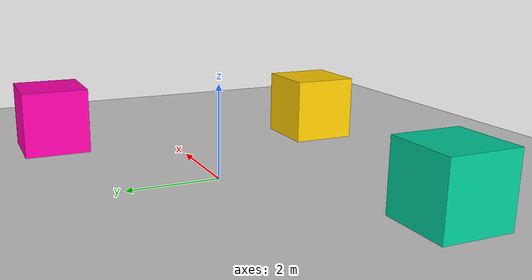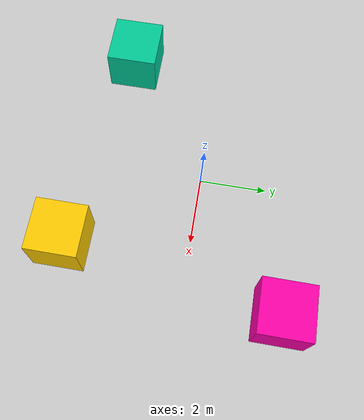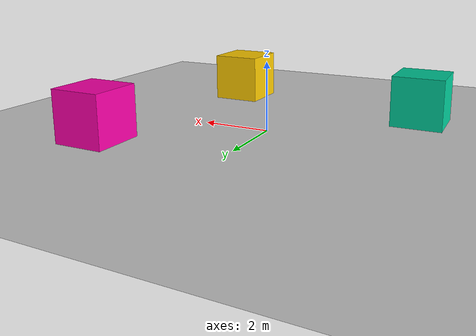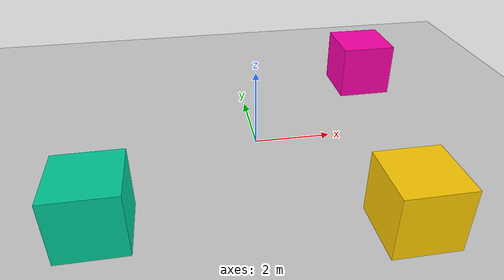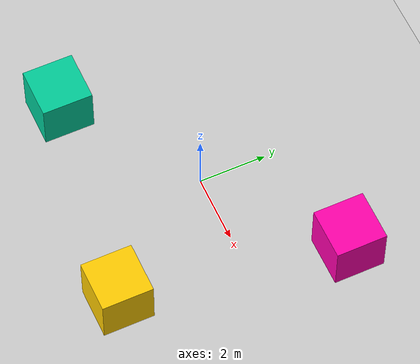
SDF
<sdf version="1.6">
 <world name="default">
  <light name="sun" type="directional">
   <cast_shadows>0</cast_shadows>
   <pose>0 0 10 0 -0 0</pose>
   <diffuse>0.8 0.8 0.8 1</diffuse>
   <specular>0.2 0.2 0.2 1</specular>
   <attenuation>
    <range>1000</range>
    <constant>0.9</constant>
    <linear>0.01</linear>
    <quadratic>0.001</quadratic>
   </attenuation>
   <direction>-0.5 0.1 -0.9</direction>
  </light>
  <model name="ground_plane">
   <static>1</static>
   <link name="link">
    <collision name="collision">
     <geometry><plane><normal>0 0 1</normal><size>100 100</size></plane></geometry>
     <surface>
      <contact><collide_bitmask>65535</collide_bitmask></contact>
      <friction><ode><mu>100</mu><mu2>50</mu2></ode></friction>
     </surface>
    </collision>
    <visual name="visual">
     <cast_shadows>0</cast_shadows>
     <geometry><plane><normal>0 0 1</normal><size>100 100</size></plane></geometry>
     <material>
      <script><uri>file://media/materials/scripts/gazebo.material</uri><name>Gazebo/Grey</name></script>
     </material>
    </visual>
   </link>
  </model>
  <gravity>0 0 -9.8</gravity>
  <magnetic_field>6e-06 2.3e-05 -4.2e-05</magnetic_field>
  <atmosphere type="adiabatic"/>
  <physics name="default_physics" default="0" type="ode">
   <max_step_size>0.001</max_step_size>
   <real_time_factor>1</real_time_factor>
   <real_time_update_rate>1000</real_time_update_rate>
  </physics>
  <scene><ambient>0.7 0.7 0.7 1</ambient><background>0.3 0.3 0.3 1</background><shadows>0</shadows></scene>
  <audio><device>default</device></audio>
  <spherical_coordinates>
   <surface_model>EARTH_WGS84</surface_model>
   <latitude_deg>0</latitude_deg>
   <longitude_deg>0</longitude_deg>
   <elevation>0</elevation>
   <heading_deg>0</heading_deg>
  </spherical_coordinates>
  <model name="cubo_majenta">
   <link name="link">
    <inertial>
     <mass>1</mass>
     <inertia>
      <ixx>0.166667</ixx>
      <ixy>0</ixy>
      <ixz>0</ixz>
      <iyy>0.166667</iyy>
      <iyz>0</iyz>
      <izz>0.166667</izz>
     </inertia>
    </inertial>
    <visual name="visual">
     <geometry><box><size>1.5 1.5 1.5</size></box></geometry>
     <material>
      <script><name>Gazebo/Grey</name><uri>file://media/materials/scripts/gazebo.material</uri></script>
      <shader type="vertex"><normal_map>__default__</normal_map></shader>
      <ambient>1 0 0.67 1</ambient>
      <diffuse>1 0 0.67 1</diffuse>
      <specular>1 0 0.67 1</specular>
      <emissive>1 0 0.67 1</emissive>
     </material>
    </visual>
    <collision name="collision">
     <geometry><box><size>1.5 1.5 1.5</size></box></geometry>
     <surface>
      <friction>
       <ode><mu>1</mu><mu2>1</mu2><fdir1>0 0 0</fdir1><slip1>0</slip1><slip2>0</slip2></ode>
       <torsional>
        <coefficient>1</coefficient>
        <patch_radius>0</patch_radius>
        <surface_radius>0</surface_radius>
        <use_patch_radius>1</use_patch_radius>
        <ode><slip>0</slip></ode>
       </torsional>
      </friction>
      <bounce><restitution_coefficient>0</restitution_coefficient><threshold>1e+06</threshold></bounce>
      <contact>
       <collide_without_contact>0</collide_without_contact>
       <collide_without_contact_bitmask>1</collide_without_contact_bitmask>
       <collide_bitmask>1</collide_bitmask>
       <ode>
        <soft_cfm>0</soft_cfm>
        <soft_erp>0.2</soft_erp>
        <kp>1e+13</kp>
        <kd>1</kd>
        <max_vel>0.01</max_vel>
        <min_depth>0</min_depth>
       </ode>
       <bullet>
        <split_impulse>1</split_impulse>
        <split_impulse_penetration_threshold>-0.01</split_impulse_penetration_threshold>
        <soft_cfm>0</soft_cfm>
        <soft_erp>0.2</soft_erp>
        <kp>1e+13</kp>
        <kd>1</kd>
       </bullet>
      </contact>
     </surface>
    </collision>
   </link>
   <static>0</static>
   <pose>3.77004 2.77281 0.75 0 -0 0</pose>
  </model>
  <model name="cubo_ciano">
   <link name="link">
    <inertial>
     <mass>1</mass>
     <inertia>
      <ixx>0.166667</ixx>
      <ixy>0</ixy>
      <ixz>0</ixz>
      <iyy>0.166667</iyy>
      <iyz>0</iyz>
      <izz>0.166667</izz>
     </inertia>
    </inertial>
    <visual name="visual">
     <geometry><box><size>1.5 1.5 1.5</size></box></geometry>
     <material>
      <script><name>Gazebo/Grey</name><uri>file://media/materials/scripts/gazebo.material</uri></script>
      <shader type="vertex"><normal_map>__default__</normal_map></shader>
      <ambient>0 0.8 0.6 1</ambient>
      <diffuse>0 0.8 0.6 1</diffuse>
      <specular>0 0.8 0.6 1</specular>
      <emissive>0 0.8 0.6 1</emissive>
     </material>
    </visual>
    <collision name="collision">
     <geometry><box><size>1.5 1.5 1.5</size></box></geometry>
     <surface>
      <friction>
       <ode><mu>1</mu><mu2>1</mu2><fdir1>0 0 0</fdir1><slip1>0</slip1><slip2>0</slip2></ode>
       <torsional>
        <coefficient>1</coefficient>
        <patch_radius>0</patch_radius>
        <surface_radius>0</surface_radius>
        <use_patch_radius>1</use_patch_radius>
        <ode><slip>0</slip></ode>
       </torsional>
      </friction>
      <bounce><restitution_coefficient>0</restitution_coefficient><threshold>1e+06</threshold></bounce>
      <contact>
       <collide_without_contact>0</collide_without_contact>
       <collide_without_contact_bitmask>1</collide_without_contact_bitmask>
       <collide_bitmask>1</collide_bitmask>
       <ode>
        <soft_cfm>0</soft_cfm>
        <soft_erp>0.2</soft_erp>
        <kp>1e+13</kp>
        <kd>1</kd>
        <max_vel>0.01</max_vel>
        <min_depth>0</min_depth>
       </ode>
       <bullet>
        <split_impulse>1</split_impulse>
        <split_impulse_penetration_threshold>-0.01</split_impulse_penetration_threshold>
        <soft_cfm>0</soft_cfm>
        <soft_erp>0.2</soft_erp>
        <kp>1e+13</kp>
        <kd>1</kd>
       </bullet>
      </contact>
     </surface>
    </collision>
   </link>
   <static>0</static>
   <pose>-3.77624 -2.71758 0.749995 0 -6e-06 0</pose>
  </model>
  <model name="cubo_amarelo">
   <link name="link">
    <inertial>
     <mass>1</mass>
     <inertia>
      <ixx>0.166667</ixx>
      <ixy>0</ixy>
      <ixz>0</ixz>
      <iyy>0.166667</iyy>
      <iyz>0</iyz>
      <izz>0.166667</izz>
     </inertia>
    </inertial>
    <visual name="visual">
     <geometry><box><size>1.5 1.5 1.5</size></box></geometry>
     <material>
      <script><name>Gazebo/Grey</name><uri>file://media/materials/scripts/gazebo.material</uri></script>
      <shader type="vertex"><normal_map>__default__</normal_map></shader>
      <ambient>1 0.8 0 1</ambient>
      <diffuse>1 0.8 0 1</diffuse>
      <specular>1 0.8 0 1</specular>
      <emissive>1 0.8 0 1</emissive>
     </material>
    </visual>
    <collision name="collision">
     <geometry><box><size>1.5 1.5 1.5</size></box></geometry>
     <surface>
      <friction>
       <ode><mu>1</mu><mu2>1</mu2><fdir1>0 0 0</fdir1><slip1>0</slip1><slip2>0</slip2></ode>
       <torsional>
        <coefficient>1</coefficient>
        <patch_radius>0</patch_radius>
        <surface_radius>0</surface_radius>
        <use_patch_radius>1</use_patch_radius>
        <ode><slip>0</slip></ode>
       </torsional>
      </friction>
      <bounce><restitution_coefficient>0</restitution_coefficient><threshold>1e+06</threshold></bounce>
      <contact>
       <collide_without_contact>0</collide_without_contact>
       <collide_without_contact_bitmask>1</collide_without_contact_bitmask>
       <collide_bitmask>1</collide_bitmask>
       <ode>
        <soft_cfm>0</soft_cfm>
        <soft_erp>0.2</soft_erp>
        <kp>1e+13</kp>
        <kd>1</kd>
        <max_vel>0.01</max_vel>
        <min_depth>0</min_depth>
       </ode>
       <bullet>
        <split_impulse>1</split_impulse>
        <split_impulse_penetration_threshold>-0.01</split_impulse_penetration_threshold>
        <soft_cfm>0</soft_cfm>
        <soft_erp>0.2</soft_erp>
        <kp>1e+13</kp>
        <kd>1</kd>
       </bullet>
      </contact>
     </surface>
    </collision>
   </link>
   <static>0</static>
   <pose>2.62996 -3.6796 0.75 0 -0 0</pose>
  </model>
 </world>
</sdf>
